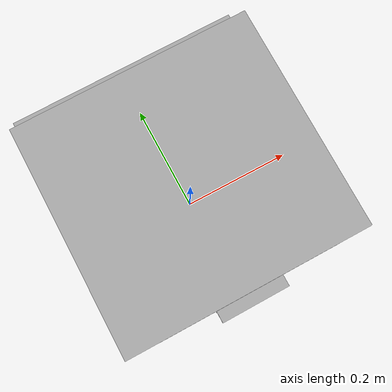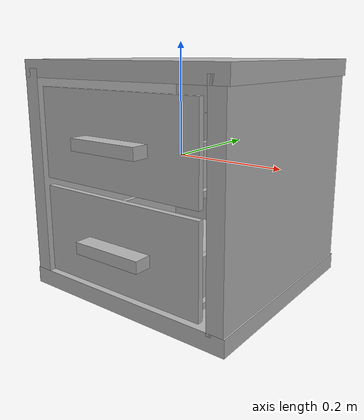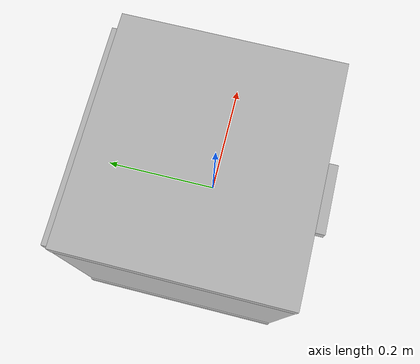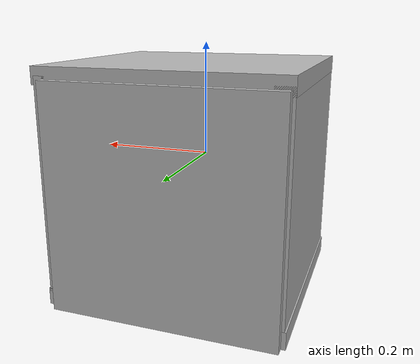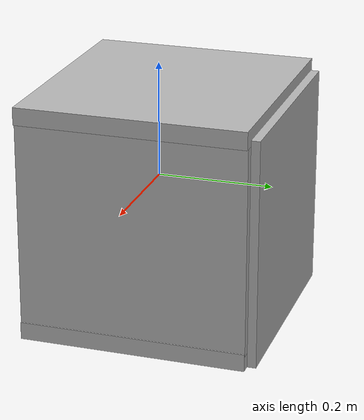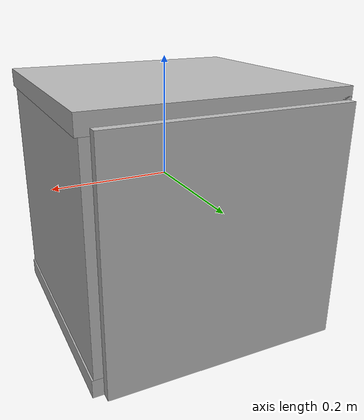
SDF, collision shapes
<?xml version="1.0"?>
<sdf version="1.4">
  <model name="Kallax">
    <link name="Kallaxbase">
      <inertial>
        <mass>10</mass>
      </inertial>

      <collision name="KallaxBaseTop">
	<pose>0.007 0.02 0.155 0 0 0 </pose>
        <geometry>
            <box>
                <size>0.415 0.39 0.03</size>
            </box>
        </geometry>
      </collision>
      <collision name="KallaxBaseLeft">
	<pose>-0.185 0.02 -0.03 0 0 0 </pose>
        <geometry>
            <box>
                <size>0.03 0.39 0.37</size>
            </box>
        </geometry>
      </collision>
      <collision name="KallaxBaseBottom">
	<pose>0.005 0.02 -0.225 0 0 0 </pose>
        <geometry>
            <box>
                <size>0.415 0.39 0.03</size>
            </box>
        </geometry>
      </collision>

      <collision name="KallaxBaseRight">
	<pose>0.1950 0.02 -0.03 0 0 0 </pose>
        <geometry>
            <box>
                <size>0.03 0.39 0.37</size>
            </box>
        </geometry>
      </collision>
      <collision name="KallaxBaseBack">
	<pose>0 0.215 -0.045 0 0 0 </pose>
        <geometry>
            <box>
                <size>0.39 0.03 0.39</size>
            </box>
        </geometry>
      </collision>

      <visual name="Basevisual">
        <pose>0 0 0 0 -0.01 0 </pose>
        <geometry>
          <mesh>
            <scale>1 1 1</scale>
            <uri>model://Kallax/meshes/Kallax.dae</uri>
          </mesh>
        </geometry>
      </visual>

    </link>

    <link name="Drawer1">
      <pose>-0.015 0.03  -0.185 0 0 0</pose>
      <inertial>
        <mass>0.4</mass>
      </inertial>
      <collision name="Drawer1Bottom">
	<pose>0.03 -0.04 0.005 0 0 0 </pose>
        <geometry>
            <box>
                <size>0.3 0.33 0.01</size>
            </box>
        </geometry>
      </collision>
      <collision name="Drawer1Front">
	<pose>0.026 -0.205 0.065 0 0 0 </pose>
        <geometry>
            <box>
                <size>0.32 0.01 0.155</size>
            </box>
        </geometry>
      </collision>
      <collision name="Drawer1Back">
	<pose>0.025 0.125 0.04 0 0 0 </pose>
        <geometry>
            <box>
                <size>0.3 0.01 0.07</size>
            </box>
        </geometry>
      </collision>
      <collision name="Drawer1Left">
	<pose>-0.125 -0.035 0.04 0 0 0 </pose>
        <geometry>
            <box>
                <size>0.01 0.345 0.07</size>
            </box>
        </geometry>
      </collision>
      <collision name="Drawer1Right">
	<pose>0.165 -0.035 0.04 0 0 0 </pose>
        <geometry>
            <box>
                <size>0.01 0.345 0.07</size>
            </box>
        </geometry>
      </collision>
      <collision name="D1handle">
	<pose>0.03 -0.22 0.06 0 0 1.57478</pose>
        <geometry>
            <box>
                <size>0.04 0.13 0.02</size>
            </box>
        </geometry>
      </collision>
      <visual name="Drawervisual">
        <geometry>
          <mesh>
            <scale>1 1 1</scale>
            <uri>model://Kallax/meshes/KallaxDrawer1.dae</uri>
          </mesh>
        </geometry>
      </visual>
    </link>

    <link name="Drawer2">
      <pose>-0.015 0.03 -0.016 0 0 0</pose>
      <inertial>
        <mass>0.4</mass>
      </inertial>
      <collision name="Drawer2Bottom">
	<pose>0.03 -0.04 0.005 0 0 0 </pose>
        <geometry>
            <box>
                <size>0.3 0.33 0.01</size>
            </box>
        </geometry>
      </collision>
      <collision name="Drawer2Front">
	<pose>0.026 -0.205 0.065 0 0 0 </pose>
        <geometry>
            <box>
                <size>0.32 0.01 0.155</size>
            </box>
        </geometry>
      </collision>
      <collision name="Drawer2Back">
	<pose>0.025 0.125 0.04 0 0 0 </pose>
        <geometry>
            <box>
                <size>0.3 0.01 0.07</size>
            </box>
        </geometry>
      </collision>
      <collision name="Drawer2Left">
	<pose>-0.125 -0.035 0.04 0 0 0 </pose>
        <geometry>
            <box>
                <size>0.01 0.345 0.07</size>
            </box>
        </geometry>
      </collision>
      <collision name="Drawer2Right">
	<pose>0.165 -0.035 0.04 0 0 0 </pose>
        <geometry>
            <box>
                <size>0.01 0.345 0.07</size>
            </box>
        </geometry>
      </collision>
      <collision name="Drawer2Handle">
	<pose>0.03 -0.22 0.06 0 0 1.57478</pose>
        <geometry>
            <box>
                <size>0.04 0.13 0.02</size>
            </box>
        </geometry>
      </collision>
      <visual name="Drawervisual2">
        <pose>0.025 -0.06 0.05 0 0 0 </pose>
        <geometry>
          <mesh>
            <scale>1 1 1</scale>
            <uri>model://Kallax/meshes/KallaxDrawer2.dae</uri>
          </mesh>
        </geometry>
      </visual>
    </link>

    <joint name='/Drawer1Joint' type='prismatic'>
      <child>Drawer1</child>
      <parent>Kallaxbase</parent>
      <pose>0 -0.02 -0.02 0 0 0</pose>
      <axis>
        <xyz>0 1 0</xyz>
        <limit>
          <lower>-0.35</lower>
          <upper>0</upper>
          <effort>1e+1</effort>
          <velocity>1000</velocity>
        </limit>
        <dynamics>
          <damping>10</damping>
        </dynamics>
      </axis>
      <physics>
        <ode>
          <limit>
            <cfm>0</cfm>
            <erp>0.2</erp>
          </limit>
        </ode>
      </physics>
    </joint>

    <joint name='/Drawer2Joint' type='prismatic'>
      <child>Drawer2</child>
      <parent>Kallaxbase</parent>
      <pose>0 -0.02 0.09 0 0 0</pose>
      <axis>
        <xyz>0 1 0</xyz>
        <limit>
          <lower>-0.35</lower>
          <upper>0</upper>
          <effort>1e+1</effort>
          <velocity>1000</velocity>
        </limit>
        <dynamics>
          <damping>10</damping>
        </dynamics>
      </axis>
      <physics>
        <ode>
          <limit>
            <cfm>0</cfm>
            <erp>0.2</erp>
          </limit>
        </ode>
      </physics>
    </joint>

    <joint name='fixe_to_world' type='fixed'>
      <child>Kallaxbase</child>
      <parent>world</parent>
      <axis>
        <xyz>0 0 1</xyz>
        <limit>
          <lower>-1e+16</lower>
          <upper>1e+16</upper>
        </limit>
      </axis>
    </joint>

  </model>
</sdf>
